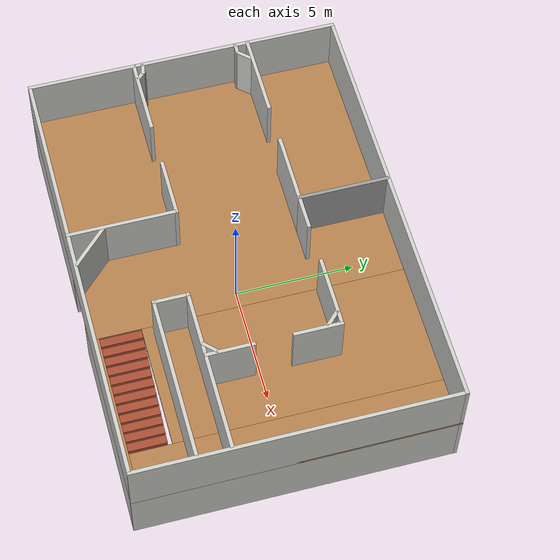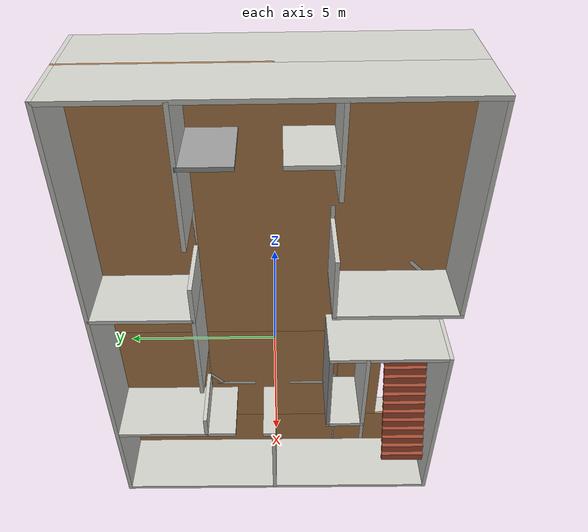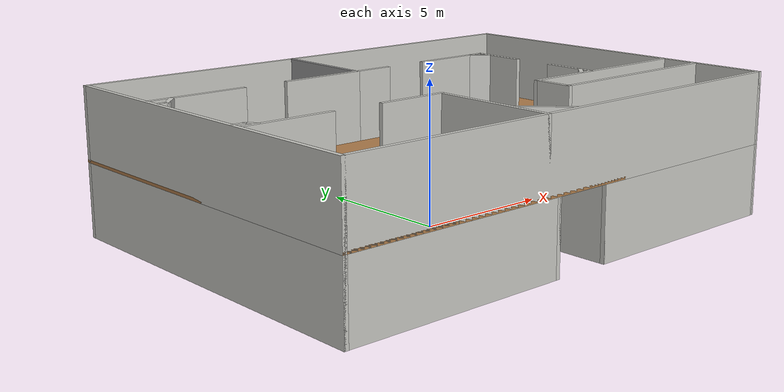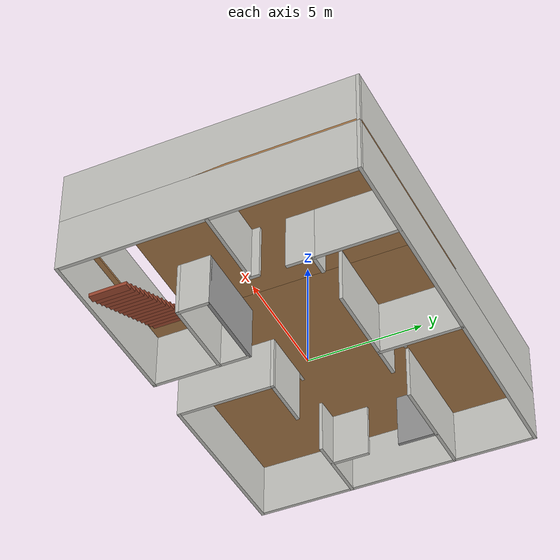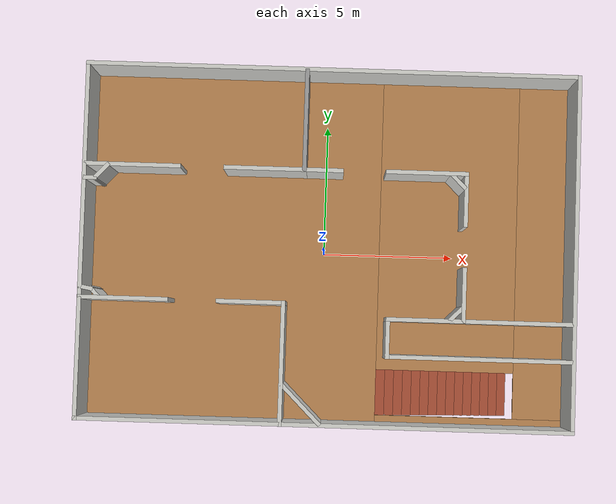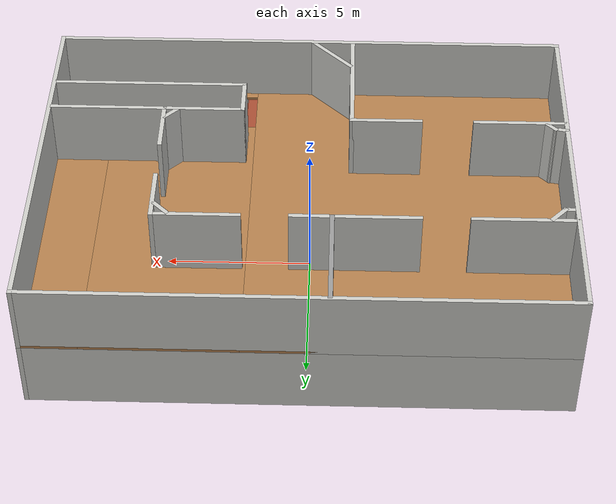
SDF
<?xml version='1.0'?>
<sdf version='1.6'>
  <model name='Indoor_Scenario'>
    <pose frame=''>0.186436 0.037213 0 0 -0 0</pose>
    <link name='Floor_1'>
      <pose frame=''>-0 0 2.5 0 -0 0</pose>
      <visual name='Floor_1_Visual_0'>
        <pose frame=''>-3.55155 0 0.05 0 -0 0</pose>
        <geometry>
          <box>
            <size>10.8969 13 0.1</size>
          </box>
        </geometry>
        <material>
          <script>
            <uri>file://media/materials/scripts/gazebo.material</uri>
            <name>Gazebo/Wood</name>
          </script>
          <ambient>1 1 1 1</ambient>
        </material>
        <meta>
          <layer>1</layer>
        </meta>
      </visual>
      <collision name='Floor_1_Collision_0'>
        <geometry>
          <box>
            <size>10.8969 13 0.1</size>
          </box>
        </geometry>
        <pose frame=''>-3.55155 0 0.05 0 -0 0</pose>
      </collision>
      <visual name='Floor_1_Visual_1'>
        <pose frame=''>5.44845 -6.305 0.05 0 -0 0</pose>
        <geometry>
          <box>
            <size>7.1031 0.389994 0.1</size>
          </box>
        </geometry>
        <material>
          <script>
            <uri>file://media/materials/scripts/gazebo.material</uri>
            <name>Gazebo/Wood</name>
          </script>
          <ambient>1 1 1 1</ambient>
        </material>
        <meta>
          <layer>1</layer>
        </meta>
      </visual>
      <collision name='Floor_1_Collision_1'>
        <geometry>
          <box>
            <size>7.1031 0.389994 0.1</size>
          </box>
        </geometry>
        <pose frame=''>5.44845 -6.305 0.05 0 -0 0</pose>
      </collision>
      <visual name='Floor_1_Visual_2'>
        <pose frame=''>8.0197 0.194997 0.05 0 -0 0</pose>
        <geometry>
          <box>
            <size>1.9606 12.61 0.1</size>
          </box>
        </geometry>
        <material>
          <script>
            <uri>file://media/materials/scripts/gazebo.material</uri>
            <name>Gazebo/Wood</name>
          </script>
          <ambient>1 1 1 1</ambient>
        </material>
        <meta>
          <layer>1</layer>
        </meta>
      </visual>
      <collision name='Floor_1_Collision_2'>
        <geometry>
          <box>
            <size>1.9606 12.61 0.1</size>
          </box>
        </geometry>
        <pose frame=''>8.0197 0.194997 0.05 0 -0 0</pose>
      </collision>
      <visual name='Floor_1_Visual_3'>
        <pose frame=''>4.46815 1.045 0.05 0 -0 0</pose>
        <geometry>
          <box>
            <size>5.1425 10.91 0.1</size>
          </box>
        </geometry>
        <material>
          <script>
            <uri>file://media/materials/scripts/gazebo.material</uri>
            <name>Gazebo/Wood</name>
          </script>
          <ambient>1 1 1 1</ambient>
        </material>
        <meta>
          <layer>1</layer>
        </meta>
      </visual>
      <collision name='Floor_1_Collision_3'>
        <geometry>
          <box>
            <size>5.1425 10.91 0.1</size>
          </box>
        </geometry>
        <pose frame=''>4.46815 1.045 0.05 0 -0 0</pose>
      </collision>
    </link>
    <link name='Stairs_0'>
      <visual name='Stairs_0_Visual_0'>
        <pose frame=''>6.86798 -5.26001 0.083333 0 -0 -1.5708</pose>
        <geometry>
          <box>
            <size>1.7 0.342833 0.166667</size>
          </box>
        </geometry>
        <material>
          <script>
            <uri>file://media/materials/scripts/gazebo.material</uri>
            <name>Gazebo/Bricks</name>
          </script>
          <ambient>1 1 1 1</ambient>
        </material>
        <meta>
          <layer>0</layer>
        </meta>
      </visual>
      <collision name='Stairs_0_Collision_0'>
        <geometry>
          <box>
            <size>1.7 0.342833 0.166667</size>
          </box>
        </geometry>
        <pose frame=''>6.86798 -5.26001 0.083333 0 -0 -1.5708</pose>
      </collision>
      <visual name='Stairs_0_Visual_1'>
        <pose frame=''>6.52515 -5.26001 0.25 0 -0 -1.5708</pose>
        <geometry>
          <box>
            <size>1.7 0.342833 0.166667</size>
          </box>
        </geometry>
        <material>
          <script>
            <uri>file://media/materials/scripts/gazebo.material</uri>
            <name>Gazebo/Bricks</name>
          </script>
          <ambient>1 1 1 1</ambient>
        </material>
        <meta>
          <layer>0</layer>
        </meta>
      </visual>
      <collision name='Stairs_0_Collision_1'>
        <geometry>
          <box>
            <size>1.7 0.342833 0.166667</size>
          </box>
        </geometry>
        <pose frame=''>6.52515 -5.26001 0.25 0 -0 -1.5708</pose>
      </collision>
      <visual name='Stairs_0_Visual_2'>
        <pose frame=''>6.18232 -5.26001 0.416667 0 -0 -1.5708</pose>
        <geometry>
          <box>
            <size>1.7 0.342833 0.166667</size>
          </box>
        </geometry>
        <material>
          <script>
            <uri>file://media/materials/scripts/gazebo.material</uri>
            <name>Gazebo/Bricks</name>
          </script>
          <ambient>1 1 1 1</ambient>
        </material>
        <meta>
          <layer>0</layer>
        </meta>
      </visual>
      <collision name='Stairs_0_Collision_2'>
        <geometry>
          <box>
            <size>1.7 0.342833 0.166667</size>
          </box>
        </geometry>
        <pose frame=''>6.18232 -5.26001 0.416667 0 -0 -1.5708</pose>
      </collision>
      <visual name='Stairs_0_Visual_3'>
        <pose frame=''>5.83948 -5.26 0.583333 0 -0 -1.5708</pose>
        <geometry>
          <box>
            <size>1.7 0.342833 0.166667</size>
          </box>
        </geometry>
        <material>
          <script>
            <uri>file://media/materials/scripts/gazebo.material</uri>
            <name>Gazebo/Bricks</name>
          </script>
          <ambient>1 1 1 1</ambient>
        </material>
        <meta>
          <layer>0</layer>
        </meta>
      </visual>
      <collision name='Stairs_0_Collision_3'>
        <geometry>
          <box>
            <size>1.7 0.342833 0.166667</size>
          </box>
        </geometry>
        <pose frame=''>5.83948 -5.26 0.583333 0 -0 -1.5708</pose>
      </collision>
      <visual name='Stairs_0_Visual_4'>
        <pose frame=''>5.49665 -5.26 0.75 0 -0 -1.5708</pose>
        <geometry>
          <box>
            <size>1.7 0.342833 0.166667</size>
          </box>
        </geometry>
        <material>
          <script>
            <uri>file://media/materials/scripts/gazebo.material</uri>
            <name>Gazebo/Bricks</name>
          </script>
          <ambient>1 1 1 1</ambient>
        </material>
        <meta>
          <layer>0</layer>
        </meta>
      </visual>
      <collision name='Stairs_0_Collision_4'>
        <geometry>
          <box>
            <size>1.7 0.342833 0.166667</size>
          </box>
        </geometry>
        <pose frame=''>5.49665 -5.26 0.75 0 -0 -1.5708</pose>
      </collision>
      <visual name='Stairs_0_Visual_5'>
        <pose frame=''>5.15381 -5.26 0.916667 0 -0 -1.5708</pose>
        <geometry>
          <box>
            <size>1.7 0.342833 0.166667</size>
          </box>
        </geometry>
        <material>
          <script>
            <uri>file://media/materials/scripts/gazebo.material</uri>
            <name>Gazebo/Bricks</name>
          </script>
          <ambient>1 1 1 1</ambient>
        </material>
        <meta>
          <layer>0</layer>
        </meta>
      </visual>
      <collision name='Stairs_0_Collision_5'>
        <geometry>
          <box>
            <size>1.7 0.342833 0.166667</size>
          </box>
        </geometry>
        <pose frame=''>5.15381 -5.26 0.916667 0 -0 -1.5708</pose>
      </collision>
      <visual name='Stairs_0_Visual_6'>
        <pose frame=''>4.81098 -5.26 1.08333 0 -0 -1.5708</pose>
        <geometry>
          <box>
            <size>1.7 0.342833 0.166667</size>
          </box>
        </geometry>
        <material>
          <script>
            <uri>file://media/materials/scripts/gazebo.material</uri>
            <name>Gazebo/Bricks</name>
          </script>
          <ambient>1 1 1 1</ambient>
        </material>
        <meta>
          <layer>0</layer>
        </meta>
      </visual>
      <collision name='Stairs_0_Collision_6'>
        <geometry>
          <box>
            <size>1.7 0.342833 0.166667</size>
          </box>
        </geometry>
        <pose frame=''>4.81098 -5.26 1.08333 0 -0 -1.5708</pose>
      </collision>
      <visual name='Stairs_0_Visual_7'>
        <pose frame=''>4.46815 -5.26 1.25 0 -0 -1.5708</pose>
        <geometry>
          <box>
            <size>1.7 0.342833 0.166667</size>
          </box>
        </geometry>
        <material>
          <script>
            <uri>file://media/materials/scripts/gazebo.material</uri>
            <name>Gazebo/Bricks</name>
          </script>
          <ambient>1 1 1 1</ambient>
        </material>
        <meta>
          <layer>0</layer>
        </meta>
      </visual>
      <collision name='Stairs_0_Collision_7'>
        <geometry>
          <box>
            <size>1.7 0.342833 0.166667</size>
          </box>
        </geometry>
        <pose frame=''>4.46815 -5.26 1.25 0 -0 -1.5708</pose>
      </collision>
      <visual name='Stairs_0_Visual_8'>
        <pose frame=''>4.12531 -5.26 1.41667 0 -0 -1.5708</pose>
        <geometry>
          <box>
            <size>1.7 0.342833 0.166667</size>
          </box>
        </geometry>
        <material>
          <script>
            <uri>file://media/materials/scripts/gazebo.material</uri>
            <name>Gazebo/Bricks</name>
          </script>
          <ambient>1 1 1 1</ambient>
        </material>
        <meta>
          <layer>0</layer>
        </meta>
      </visual>
      <collision name='Stairs_0_Collision_8'>
        <geometry>
          <box>
            <size>1.7 0.342833 0.166667</size>
          </box>
        </geometry>
        <pose frame=''>4.12531 -5.26 1.41667 0 -0 -1.5708</pose>
      </collision>
      <visual name='Stairs_0_Visual_9'>
        <pose frame=''>3.78248 -5.26 1.58333 0 -0 -1.5708</pose>
        <geometry>
          <box>
            <size>1.7 0.342833 0.166667</size>
          </box>
        </geometry>
        <material>
          <script>
            <uri>file://media/materials/scripts/gazebo.material</uri>
            <name>Gazebo/Bricks</name>
          </script>
          <ambient>1 1 1 1</ambient>
        </material>
        <meta>
          <layer>0</layer>
        </meta>
      </visual>
      <collision name='Stairs_0_Collision_9'>
        <geometry>
          <box>
            <size>1.7 0.342833 0.166667</size>
          </box>
        </geometry>
        <pose frame=''>3.78248 -5.26 1.58333 0 -0 -1.5708</pose>
      </collision>
      <visual name='Stairs_0_Visual_10'>
        <pose frame=''>3.43965 -5.26 1.75 0 -0 -1.5708</pose>
        <geometry>
          <box>
            <size>1.7 0.342833 0.166667</size>
          </box>
        </geometry>
        <material>
          <script>
            <uri>file://media/materials/scripts/gazebo.material</uri>
            <name>Gazebo/Bricks</name>
          </script>
          <ambient>1 1 1 1</ambient>
        </material>
        <meta>
          <layer>0</layer>
        </meta>
      </visual>
      <collision name='Stairs_0_Collision_10'>
        <geometry>
          <box>
            <size>1.7 0.342833 0.166667</size>
          </box>
        </geometry>
        <pose frame=''>3.43965 -5.26 1.75 0 -0 -1.5708</pose>
      </collision>
      <visual name='Stairs_0_Visual_11'>
        <pose frame=''>3.09681 -5.26 1.91667 0 -0 -1.5708</pose>
        <geometry>
          <box>
            <size>1.7 0.342833 0.166667</size>
          </box>
        </geometry>
        <material>
          <script>
            <uri>file://media/materials/scripts/gazebo.material</uri>
            <name>Gazebo/Bricks</name>
          </script>
          <ambient>1 1 1 1</ambient>
        </material>
        <meta>
          <layer>0</layer>
        </meta>
      </visual>
      <collision name='Stairs_0_Collision_11'>
        <geometry>
          <box>
            <size>1.7 0.342833 0.166667</size>
          </box>
        </geometry>
        <pose frame=''>3.09681 -5.26 1.91667 0 -0 -1.5708</pose>
      </collision>
      <visual name='Stairs_0_Visual_12'>
        <pose frame=''>2.75398 -5.26 2.08333 0 -0 -1.5708</pose>
        <geometry>
          <box>
            <size>1.7 0.342833 0.166667</size>
          </box>
        </geometry>
        <material>
          <script>
            <uri>file://media/materials/scripts/gazebo.material</uri>
            <name>Gazebo/Bricks</name>
          </script>
          <ambient>1 1 1 1</ambient>
        </material>
        <meta>
          <layer>0</layer>
        </meta>
      </visual>
      <collision name='Stairs_0_Collision_12'>
        <geometry>
          <box>
            <size>1.7 0.342833 0.166667</size>
          </box>
        </geometry>
        <pose frame=''>2.75398 -5.26 2.08333 0 -0 -1.5708</pose>
      </collision>
      <visual name='Stairs_0_Visual_13'>
        <pose frame=''>2.41115 -5.26 2.25 0 -0 -1.5708</pose>
        <geometry>
          <box>
            <size>1.7 0.342833 0.166667</size>
          </box>
        </geometry>
        <material>
          <script>
            <uri>file://media/materials/scripts/gazebo.material</uri>
            <name>Gazebo/Bricks</name>
          </script>
          <ambient>1 1 1 1</ambient>
        </material>
        <meta>
          <layer>0</layer>
        </meta>
      </visual>
      <collision name='Stairs_0_Collision_13'>
        <geometry>
          <box>
            <size>1.7 0.342833 0.166667</size>
          </box>
        </geometry>
        <pose frame=''>2.41115 -5.26 2.25 0 -0 -1.5708</pose>
      </collision>
      <visual name='Stairs_0_Visual_14'>
        <pose frame=''>2.06831 -5.26 2.41667 0 -0 -1.5708</pose>
        <geometry>
          <box>
            <size>1.7 0.342833 0.166667</size>
          </box>
        </geometry>
        <material>
          <script>
            <uri>file://media/materials/scripts/gazebo.material</uri>
            <name>Gazebo/Bricks</name>
          </script>
          <ambient>1 1 1 1</ambient>
        </material>
        <meta>
          <layer>0</layer>
        </meta>
      </visual>
      <collision name='Stairs_0_Collision_14'>
        <geometry>
          <box>
            <size>1.7 0.342833 0.166667</size>
          </box>
        </geometry>
        <pose frame=''>2.06831 -5.26 2.41667 0 -0 -1.5708</pose>
      </collision>
    </link>
    <link name='Wall_0'>
      <collision name='Wall_0_Collision'>
        <geometry>
          <box>
            <size>8 0.15 2.5</size>
          </box>
        </geometry>
        <pose frame=''>0 0 1.25 0 -0 0</pose>
      </collision>
      <visual name='Wall_0_Visual'>
        <pose frame=''>0 0 1.25 0 -0 0</pose>
        <geometry>
          <box>
            <size>8 0.15 2.5</size>
          </box>
        </geometry>
        <material>
          <script>
            <uri>file://media/materials/scripts/gazebo.material</uri>
            <name>Gazebo/CeilingTiled</name>
          </script>
          <ambient>0.654902 0.537255 0.419608 1</ambient>
        </material>
        <meta>
          <layer>0</layer>
        </meta>
      </visual>
      <pose frame=''>5 -6.425 0 0 -0 0</pose>
    </link>
    <link name='Wall_1'>
      <collision name='Wall_1_Collision'>
        <geometry>
          <box>
            <size>13 0.15 2.5</size>
          </box>
        </geometry>
        <pose frame=''>0 0 1.25 0 -0 0</pose>
      </collision>
      <visual name='Wall_1_Visual'>
        <pose frame=''>0 0 1.25 0 -0 0</pose>
        <geometry>
          <box>
            <size>13 0.15 2.5</size>
          </box>
        </geometry>
        <material>
          <script>
            <uri>file://media/materials/scripts/gazebo.material</uri>
            <name>Gazebo/CeilingTiled</name>
          </script>
          <ambient>0.654902 0.537255 0.419608 1</ambient>
        </material>
        <meta>
          <layer>0</layer>
        </meta>
      </visual>
      <pose frame=''>8.925 0 0 0 -0 1.5708</pose>
    </link>
    <link name='Wall_101'>
      <collision name='Wall_101_Collision'>
        <geometry>
          <box>
            <size>18 0.15 2.5</size>
          </box>
        </geometry>
        <pose frame=''>0 0 1.25 0 -0 0</pose>
      </collision>
      <visual name='Wall_101_Visual'>
        <pose frame=''>0 0 1.25 0 -0 0</pose>
        <geometry>
          <box>
            <size>18 0.15 2.5</size>
          </box>
        </geometry>
        <material>
          <script>
            <uri>file://media/materials/scripts/gazebo.material</uri>
            <name>Gazebo/CeilingTiled</name>
          </script>
          <ambient>0.658824 0.541176 0.423529 1</ambient>
        </material>
        <meta>
          <layer>1</layer>
        </meta>
      </visual>
      <pose frame=''>-0 -6.425 2.5 0 -0 0</pose>
    </link>
    <link name='Wall_108'>
      <collision name='Wall_108_Collision'>
        <geometry>
          <box>
            <size>3 0.15 2.5</size>
          </box>
        </geometry>
        <pose frame=''>0 0 1.25 0 -0 0</pose>
      </collision>
      <visual name='Wall_108_Visual'>
        <pose frame=''>0 0 1.25 0 -0 0</pose>
        <geometry>
          <box>
            <size>3 0.15 2.5</size>
          </box>
        </geometry>
        <material>
          <script>
            <uri>file://media/materials/scripts/gazebo.material</uri>
            <name>Gazebo/CeilingTiled</name>
          </script>
          <ambient>1 1 1 1</ambient>
        </material>
        <meta>
          <layer>1</layer>
        </meta>
      </visual>
      <pose frame=''>3.48912 2.78254 2.5 0 -0 0</pose>
    </link>
    <link name='Wall_109'>
      <collision name='Wall_109_Collision'>
        <geometry>
          <box>
            <size>2 0.15 2.5</size>
          </box>
        </geometry>
        <pose frame=''>0 0 1.25 0 -0 0</pose>
      </collision>
      <visual name='Wall_109_Visual'>
        <pose frame=''>0 0 1.25 0 -0 0</pose>
        <geometry>
          <box>
            <size>2 0.15 2.5</size>
          </box>
        </geometry>
        <material>
          <script>
            <uri>file://media/materials/scripts/gazebo.material</uri>
            <name>Gazebo/CeilingTiled</name>
          </script>
          <ambient>1 1 1 1</ambient>
        </material>
        <meta>
          <layer>1</layer>
        </meta>
      </visual>
      <pose frame=''>4.91412 1.85754 2.5 0 -0 -1.5708</pose>
    </link>
    <link name='Wall_11'>
      <collision name='Wall_11_Collision'>
        <geometry>
          <box>
            <size>4.5 0.15 2.5</size>
          </box>
        </geometry>
        <pose frame=''>0 0 1.25 0 -0 0</pose>
      </collision>
      <visual name='Wall_11_Visual'>
        <pose frame=''>0 0 1.25 0 -0 0</pose>
        <geometry>
          <box>
            <size>4.5 0.15 2.5</size>
          </box>
        </geometry>
        <material>
          <script>
            <uri>file://media/materials/scripts/gazebo.material</uri>
            <name>Gazebo/CeilingTiled</name>
          </script>
          <ambient>0.654902 0.537255 0.419608 1</ambient>
        </material>
        <meta>
          <layer>0</layer>
        </meta>
      </visual>
      <pose frame=''>1.075 -4.25 0 0 -0 1.5708</pose>
    </link>
    <link name='Wall_111'>
      <collision name='Wall_111_Collision'>
        <geometry>
          <box>
            <size>2 0.15 2.5</size>
          </box>
        </geometry>
        <pose frame=''>0 0 1.25 0 -0 0</pose>
      </collision>
      <visual name='Wall_111_Visual'>
        <pose frame=''>0 0 1.25 0 -0 0</pose>
        <geometry>
          <box>
            <size>2 0.15 2.5</size>
          </box>
        </geometry>
        <material>
          <script>
            <uri>file://media/materials/scripts/gazebo.material</uri>
            <name>Gazebo/CeilingTiled</name>
          </script>
          <ambient>1 1 1 1</ambient>
        </material>
        <meta>
          <layer>1</layer>
        </meta>
      </visual>
      <pose frame=''>4.92449 -1.59747 2.5 0 -0 -1.5708</pose>
    </link>
    <link name='Wall_115'>
      <collision name='Wall_115_Collision'>
        <geometry>
          <box>
            <size>2 0.15 2.5</size>
          </box>
        </geometry>
        <pose frame=''>0 0 1.25 0 -0 0</pose>
      </collision>
      <visual name='Wall_115_Visual'>
        <pose frame=''>0 0 1.25 0 -0 0</pose>
        <geometry>
          <box>
            <size>2 0.15 2.5</size>
          </box>
        </geometry>
        <material>
          <script>
            <uri>file://media/materials/scripts/gazebo.material</uri>
            <name>Gazebo/CeilingTiled</name>
          </script>
          <ambient>1 1 1 1</ambient>
        </material>
        <meta>
          <layer>1</layer>
        </meta>
      </visual>
      <pose frame=''>-0.839695 -5.70978 2.5 0 -0 -0.785398</pose>
    </link>
    <link name='Wall_117'>
      <collision name='Wall_117_Collision'>
        <geometry>
          <box>
            <size>0.75 0.15 2.5</size>
          </box>
        </geometry>
        <pose frame=''>0 0 1.25 0 -0 0</pose>
      </collision>
      <visual name='Wall_117_Visual'>
        <pose frame=''>0 0 1.25 0 -0 0</pose>
        <geometry>
          <box>
            <size>0.75 0.15 2.5</size>
          </box>
        </geometry>
        <material>
          <script>
            <uri>file://media/materials/scripts/gazebo.material</uri>
            <name>Gazebo/CeilingTiled</name>
          </script>
          <ambient>1 1 1 1</ambient>
        </material>
        <meta>
          <layer>1</layer>
        </meta>
      </visual>
      <pose frame=''>4.66498 -2.29002 2.5 0 -0 0.785398</pose>
    </link>
    <link name='Wall_119'>
      <collision name='Wall_119_Collision'>
        <geometry>
          <box>
            <size>0.75 0.15 2.5</size>
          </box>
        </geometry>
        <pose frame=''>0 0 1.25 0 -0 0</pose>
      </collision>
      <visual name='Wall_119_Visual'>
        <pose frame=''>0 0 1.25 0 -0 0</pose>
        <geometry>
          <box>
            <size>0.75 0.15 2.5</size>
          </box>
        </geometry>
        <material>
          <script>
            <uri>file://media/materials/scripts/gazebo.material</uri>
            <name>Gazebo/CeilingTiled</name>
          </script>
          <ambient>1 1 1 1</ambient>
        </material>
        <meta>
          <layer>1</layer>
        </meta>
      </visual>
      <pose frame=''>4.6255 2.50225 2.5 0 -0 2.35619</pose>
    </link>
    <link name='Wall_12'>
      <collision name='Wall_12_Collision'>
        <geometry>
          <box>
            <size>3.75 0.15 2.5</size>
          </box>
        </geometry>
        <pose frame=''>0 0 1.25 0 -0 0</pose>
      </collision>
      <visual name='Wall_12_Visual'>
        <pose frame=''>0 0 1.25 0 -0 0</pose>
        <geometry>
          <box>
            <size>3.75 0.15 2.5</size>
          </box>
        </geometry>
        <material>
          <script>
            <uri>file://media/materials/scripts/gazebo.material</uri>
            <name>Gazebo/Grey</name>
          </script>
          <ambient>1 1 1 1</ambient>
        </material>
        <meta>
          <layer>0</layer>
        </meta>
      </visual>
      <pose frame=''>2.875 -2.075 0 0 -0 0</pose>
    </link>
    <link name='Wall_128'>
      <collision name='Wall_128_Collision'>
        <geometry>
          <box>
            <size>0.5 0.15 2.5</size>
          </box>
        </geometry>
        <pose frame=''>0 0 1.25 0 -0 0</pose>
      </collision>
      <visual name='Wall_128_Visual'>
        <pose frame=''>0 0 1.25 0 -0 0</pose>
        <geometry>
          <box>
            <size>0.5 0.15 2.5</size>
          </box>
        </geometry>
        <material>
          <script>
            <uri>file://media/materials/scripts/gazebo.material</uri>
            <name>Gazebo/CeilingTiled</name>
          </script>
          <ambient>1 1 1 1</ambient>
        </material>
        <meta>
          <layer>1</layer>
        </meta>
      </visual>
      <pose frame=''>-8.70556 2.24316 2.5 0 -0 0</pose>
    </link>
    <link name='Wall_129'>
      <collision name='Wall_129_Collision'>
        <geometry>
          <box>
            <size>0.802321 0.15 2.5</size>
          </box>
        </geometry>
        <pose frame=''>0 0 1.25 0 -0 0</pose>
      </collision>
      <visual name='Wall_129_Visual'>
        <pose frame=''>0 0 1.25 0 -0 0</pose>
        <geometry>
          <box>
            <size>0.802321 0.15 2.5</size>
          </box>
        </geometry>
        <material>
          <script>
            <uri>file://media/materials/scripts/gazebo.material</uri>
            <name>Gazebo/CeilingTiled</name>
          </script>
          <ambient>1 1 1 1</ambient>
        </material>
        <meta>
          <layer>1</layer>
        </meta>
      </visual>
      <pose frame=''>-8.30782 2.48141 2.5 0 -0 0.819008</pose>
    </link>
    <link name='Wall_13'>
      <collision name='Wall_13_Collision'>
        <geometry>
          <box>
            <size>1.5 0.15 2.5</size>
          </box>
        </geometry>
        <pose frame=''>0 0 1.25 0 -0 0</pose>
      </collision>
      <visual name='Wall_13_Visual'>
        <pose frame=''>0 0 1.25 0 -0 0</pose>
        <geometry>
          <box>
            <size>1.5 0.15 2.5</size>
          </box>
        </geometry>
        <material>
          <script>
            <uri>file://media/materials/scripts/gazebo.material</uri>
            <name>Gazebo/CeilingTiled</name>
          </script>
          <ambient>1 1 1 1</ambient>
        </material>
        <meta>
          <layer>0</layer>
        </meta>
      </visual>
      <pose frame=''>4.675 -2.75 0 0 -0 -1.5708</pose>
    </link>
    <link name='Wall_131'>
      <collision name='Wall_131_Collision'>
        <geometry>
          <box>
            <size>0.529328 0.15 2.5</size>
          </box>
        </geometry>
        <pose frame=''>0 0 1.25 0 -0 0</pose>
      </collision>
      <visual name='Wall_131_Visual'>
        <pose frame=''>0 0 1.25 0 -0 0</pose>
        <geometry>
          <box>
            <size>0.529328 0.15 2.5</size>
          </box>
        </geometry>
        <material>
          <script>
            <uri>file://media/materials/scripts/gazebo.material</uri>
            <name>Gazebo/CeilingTiled</name>
          </script>
          <ambient>1 1 1 1</ambient>
        </material>
        <meta>
          <layer>1</layer>
        </meta>
      </visual>
      <pose frame=''>-8.71165 -1.73835 2.5 0 -0 -0.182919</pose>
    </link>
    <link name='Wall_132'>
      <collision name='Wall_132_Collision'>
        <geometry>
          <box>
            <size>0.5 0.15 2.5</size>
          </box>
        </geometry>
        <pose frame=''>0 0 1.25 0 -0 0</pose>
      </collision>
      <visual name='Wall_132_Visual'>
        <pose frame=''>0 0 1.25 0 -0 0</pose>
        <geometry>
          <box>
            <size>0.5 0.15 2.5</size>
          </box>
        </geometry>
        <material>
          <script>
            <uri>file://media/materials/scripts/gazebo.material</uri>
            <name>Gazebo/CeilingTiled</name>
          </script>
          <ambient>1 1 1 1</ambient>
        </material>
        <meta>
          <layer>1</layer>
        </meta>
      </visual>
      <pose frame=''>-8.40141 -1.8851 2.5 0 -0 -0.785398</pose>
    </link>
    <link name='Wall_15'>
      <collision name='Wall_15_Collision'>
        <geometry>
          <box>
            <size>3.75 0.15 2.5</size>
          </box>
        </geometry>
        <pose frame=''>0 0 1.25 0 -0 0</pose>
      </collision>
      <visual name='Wall_15_Visual'>
        <pose frame=''>0 0 1.25 0 -0 0</pose>
        <geometry>
          <box>
            <size>3.75 0.15 2.5</size>
          </box>
        </geometry>
        <material>
          <script>
            <uri>file://media/materials/scripts/gazebo.material</uri>
            <name>Gazebo/CeilingTiled</name>
          </script>
          <ambient>1 1 1 1</ambient>
        </material>
        <meta>
          <layer>0</layer>
        </meta>
      </visual>
      <pose frame=''>-0.967862 4.56501 0 0 -0 -1.5708</pose>
    </link>
    <link name='Wall_17'>
      <collision name='Wall_17_Collision'>
        <geometry>
          <box>
            <size>1.5 0.15 2.5</size>
          </box>
        </geometry>
        <pose frame=''>0 0 1.25 0 -0 0</pose>
      </collision>
      <visual name='Wall_17_Visual'>
        <pose frame=''>0 0 1.25 0 -0 0</pose>
        <geometry>
          <box>
            <size>1.5 0.15 2.5</size>
          </box>
        </geometry>
        <material>
          <script>
            <uri>file://media/materials/scripts/gazebo.material</uri>
            <name>Gazebo/CeilingTiled</name>
          </script>
          <ambient>1 1 1 1</ambient>
        </material>
        <meta>
          <layer>0</layer>
        </meta>
      </visual>
      <pose frame=''>-1.64286 2.76501 0 0 -0 3.14159</pose>
    </link>
    <link name='Wall_2'>
      <collision name='Wall_2_Collision'>
        <geometry>
          <box>
            <size>18 0.15 2.5</size>
          </box>
        </geometry>
        <pose frame=''>0 0 1.25 0 -0 0</pose>
      </collision>
      <visual name='Wall_2_Visual'>
        <pose frame=''>0 0 1.25 0 -0 0</pose>
        <geometry>
          <box>
            <size>18 0.15 2.5</size>
          </box>
        </geometry>
        <material>
          <script>
            <uri>file://media/materials/scripts/gazebo.material</uri>
            <name>Gazebo/CeilingTiled</name>
          </script>
          <ambient>0.654902 0.537255 0.419608 1</ambient>
        </material>
        <meta>
          <layer>0</layer>
        </meta>
      </visual>
      <pose frame=''>-0 6.425 0 0 -0 3.14159</pose>
    </link>
    <link name='Wall_21'>
      <collision name='Wall_21_Collision'>
        <geometry>
          <box>
            <size>3.75 0.15 2.5</size>
          </box>
        </geometry>
        <pose frame=''>0 0 1.25 0 -0 0</pose>
      </collision>
      <visual name='Wall_21_Visual'>
        <pose frame=''>0 0 1.25 0 -0 0</pose>
        <geometry>
          <box>
            <size>3.75 0.15 2.5</size>
          </box>
        </geometry>
        <material>
          <script>
            <uri>file://media/materials/scripts/gazebo.material</uri>
            <name>Gazebo/CeilingTiled</name>
          </script>
          <ambient>1 1 1 1</ambient>
        </material>
        <meta>
          <layer>0</layer>
        </meta>
      </visual>
      <pose frame=''>0.832138 2.76501 0 0 -0 0</pose>
    </link>
    <link name='Wall_23'>
      <collision name='Wall_23_Collision'>
        <geometry>
          <box>
            <size>3.75 0.15 2.5</size>
          </box>
        </geometry>
        <pose frame=''>0 0 1.25 0 -0 0</pose>
      </collision>
      <visual name='Wall_23_Visual'>
        <pose frame=''>0 0 1.25 0 -0 0</pose>
        <geometry>
          <box>
            <size>3.75 0.15 2.5</size>
          </box>
        </geometry>
        <material>
          <script>
            <uri>file://media/materials/scripts/gazebo.material</uri>
            <name>Gazebo/CeilingTiled</name>
          </script>
          <ambient>1 1 1 1</ambient>
        </material>
        <meta>
          <layer>0</layer>
        </meta>
      </visual>
      <pose frame=''>5.26773 4.59542 0 0 -0 -1.5708</pose>
    </link>
    <link name='Wall_24'>
      <collision name='Wall_24_Collision'>
        <geometry>
          <box>
            <size>1 0.15 2.5</size>
          </box>
        </geometry>
        <pose frame=''>0 0 1.25 0 -0 0</pose>
      </collision>
      <visual name='Wall_24_Visual'>
        <pose frame=''>0 0 1.25 0 -0 0</pose>
        <geometry>
          <box>
            <size>1 0.15 2.5</size>
          </box>
        </geometry>
        <material>
          <script>
            <uri>file://media/materials/scripts/gazebo.material</uri>
            <name>Gazebo/CeilingTiled</name>
          </script>
          <ambient>1 1 1 1</ambient>
        </material>
        <meta>
          <layer>0</layer>
        </meta>
      </visual>
      <pose frame=''>4.84272 2.79542 0 0 -0 3.14159</pose>
    </link>
    <link name='Wall_26'>
      <collision name='Wall_26_Collision'>
        <geometry>
          <box>
            <size>1.25042 0.15 2.5</size>
          </box>
        </geometry>
        <pose frame=''>0 0 1.25 0 -0 0</pose>
      </collision>
      <visual name='Wall_26_Visual'>
        <pose frame=''>0 0 1.25 0 -0 0</pose>
        <geometry>
          <box>
            <size>1.25042 0.15 2.5</size>
          </box>
        </geometry>
        <material>
          <script>
            <uri>file://media/materials/scripts/gazebo.material</uri>
            <name>Gazebo/CeilingTiled</name>
          </script>
          <ambient>1 1 1 1</ambient>
        </material>
        <meta>
          <layer>0</layer>
        </meta>
      </visual>
      <pose frame=''>5.26773 2.24542 0 0 -0 -1.5708</pose>
    </link>
    <link name='Wall_28'>
      <collision name='Wall_28_Collision'>
        <geometry>
          <box>
            <size>0.5 0.15 2.5</size>
          </box>
        </geometry>
        <pose frame=''>0 0 1.25 0 -0 0</pose>
      </collision>
      <visual name='Wall_28_Visual'>
        <pose frame=''>0 0 1.25 0 -0 0</pose>
        <geometry>
          <box>
            <size>0.5 0.15 2.5</size>
          </box>
        </geometry>
        <material>
          <script>
            <uri>file://media/materials/scripts/gazebo.material</uri>
            <name>Gazebo/CeilingTiled</name>
          </script>
          <ambient>1 1 1 1</ambient>
        </material>
        <meta>
          <layer>0</layer>
        </meta>
      </visual>
      <pose frame=''>5.28293 0.258594 0 0 -0 -1.5708</pose>
    </link>
    <link name='Wall_29'>
      <collision name='Wall_29_Collision'>
        <geometry>
          <box>
            <size>3.75 0.15 2.5</size>
          </box>
        </geometry>
        <pose frame=''>0 0 1.25 0 -0 0</pose>
      </collision>
      <visual name='Wall_29_Visual'>
        <pose frame=''>0 0 1.25 0 -0 0</pose>
        <geometry>
          <box>
            <size>3.75 0.15 2.5</size>
          </box>
        </geometry>
        <material>
          <script>
            <uri>file://media/materials/scripts/gazebo.material</uri>
            <name>Gazebo/CeilingTiled</name>
          </script>
          <ambient>1 1 1 1</ambient>
        </material>
        <meta>
          <layer>0</layer>
        </meta>
      </visual>
      <pose frame=''>7.08293 0.083594 0 0 -0 0</pose>
    </link>
    <link name='Wall_3'>
      <collision name='Wall_3_Collision'>
        <geometry>
          <box>
            <size>13 0.15 2.5</size>
          </box>
        </geometry>
        <pose frame=''>0 0 1.25 0 -0 0</pose>
      </collision>
      <visual name='Wall_3_Visual'>
        <pose frame=''>0 0 1.25 0 -0 0</pose>
        <geometry>
          <box>
            <size>13 0.15 2.5</size>
          </box>
        </geometry>
        <material>
          <script>
            <uri>file://media/materials/scripts/gazebo.material</uri>
            <name>Gazebo/CeilingTiled</name>
          </script>
          <ambient>0.654902 0.537255 0.419608 1</ambient>
        </material>
        <meta>
          <layer>0</layer>
        </meta>
      </visual>
      <pose frame=''>-8.925 0 0 0 -0 -1.5708</pose>
    </link>
    <link name='Wall_4'>
      <collision name='Wall_4_Collision'>
        <geometry>
          <box>
            <size>8 0.15 2.5</size>
          </box>
        </geometry>
        <pose frame=''>0 0 1.25 0 -0 0</pose>
      </collision>
      <visual name='Wall_4_Visual'>
        <pose frame=''>0 0 1.25 0 -0 0</pose>
        <geometry>
          <box>
            <size>8 0.15 2.5</size>
          </box>
        </geometry>
        <material>
          <script>
            <uri>file://media/materials/scripts/gazebo.material</uri>
            <name>Gazebo/CeilingTiled</name>
          </script>
          <ambient>0.654902 0.537255 0.419608 1</ambient>
        </material>
        <meta>
          <layer>0</layer>
        </meta>
      </visual>
      <pose frame=''>-5 -6.425 0 0 -0 0</pose>
    </link>
    <link name='Wall_6'>
      <collision name='Wall_6_Collision'>
        <geometry>
          <box>
            <size>4.5 0.15 2.5</size>
          </box>
        </geometry>
        <pose frame=''>0 0 1.25 0 -0 0</pose>
      </collision>
      <visual name='Wall_6_Visual'>
        <pose frame=''>0 0 1.25 0 -0 0</pose>
        <geometry>
          <box>
            <size>4.5 0.15 2.5</size>
          </box>
        </geometry>
        <material>
          <script>
            <uri>file://media/materials/scripts/gazebo.material</uri>
            <name>Gazebo/CeilingTiled</name>
          </script>
          <ambient>0.654902 0.537255 0.419608 1</ambient>
        </material>
        <meta>
          <layer>0</layer>
        </meta>
      </visual>
      <pose frame=''>-1.075 -4.25 0 0 -0 1.5708</pose>
    </link>
    <link name='Wall_67'>
      <collision name='Wall_67_Collision'>
        <geometry>
          <box>
            <size>13 0.15 2.5</size>
          </box>
        </geometry>
        <pose frame=''>0 0 1.25 0 -0 0</pose>
      </collision>
      <visual name='Wall_67_Visual'>
        <pose frame=''>0 0 1.25 0 -0 0</pose>
        <geometry>
          <box>
            <size>13 0.15 2.5</size>
          </box>
        </geometry>
        <material>
          <script>
            <uri>file://media/materials/scripts/gazebo.material</uri>
            <name>Gazebo/CeilingTiled</name>
          </script>
          <ambient>0.658824 0.541176 0.423529 1</ambient>
        </material>
        <meta>
          <layer>1</layer>
        </meta>
      </visual>
      <pose frame=''>8.925 0 2.5 0 -0 1.5708</pose>
    </link>
    <link name='Wall_68'>
      <collision name='Wall_68_Collision'>
        <geometry>
          <box>
            <size>18 0.15 2.5</size>
          </box>
        </geometry>
        <pose frame=''>0 0 1.25 0 -0 0</pose>
      </collision>
      <visual name='Wall_68_Visual'>
        <pose frame=''>0 0 1.25 0 -0 0</pose>
        <geometry>
          <box>
            <size>18 0.15 2.5</size>
          </box>
        </geometry>
        <material>
          <script>
            <uri>file://media/materials/scripts/gazebo.material</uri>
            <name>Gazebo/CeilingTiled</name>
          </script>
          <ambient>0.658824 0.541176 0.423529 1</ambient>
        </material>
        <meta>
          <layer>1</layer>
        </meta>
      </visual>
      <pose frame=''>-0 6.425 2.5 0 -0 3.14159</pose>
    </link>
    <link name='Wall_69'>
      <collision name='Wall_69_Collision'>
        <geometry>
          <box>
            <size>13 0.15 2.5</size>
          </box>
        </geometry>
        <pose frame=''>0 0 1.25 0 -0 0</pose>
      </collision>
      <visual name='Wall_69_Visual'>
        <pose frame=''>0 0 1.25 0 -0 0</pose>
        <geometry>
          <box>
            <size>13 0.15 2.5</size>
          </box>
        </geometry>
        <material>
          <script>
            <uri>file://media/materials/scripts/gazebo.material</uri>
            <name>Gazebo/CeilingTiled</name>
          </script>
          <ambient>0.658824 0.541176 0.423529 1</ambient>
        </material>
        <meta>
          <layer>1</layer>
        </meta>
      </visual>
      <pose frame=''>-8.925 0 2.5 0 -0 -1.5708</pose>
    </link>
    <link name='Wall_7'>
      <collision name='Wall_7_Collision'>
        <geometry>
          <box>
            <size>2.4829 0.15 2.5</size>
          </box>
        </geometry>
        <pose frame=''>0 0 1.25 0 -0 0</pose>
      </collision>
      <visual name='Wall_7_Visual'>
        <pose frame=''>0 0 1.25 0 -0 0</pose>
        <geometry>
          <box>
            <size>2.4829 0.15 2.5</size>
          </box>
        </geometry>
        <material>
          <script>
            <uri>file://media/materials/scripts/gazebo.material</uri>
            <name>Gazebo/CeilingTiled</name>
          </script>
          <ambient>1 1 1 1</ambient>
        </material>
        <meta>
          <layer>0</layer>
        </meta>
      </visual>
      <pose frame=''>-2.24145 -2.075 0 0 -0 3.14159</pose>
    </link>
    <link name='Wall_71'>
      <collision name='Wall_71_Collision'>
        <geometry>
          <box>
            <size>4.5 0.15 2.5</size>
          </box>
        </geometry>
        <pose frame=''>0 0 1.25 0 -0 0</pose>
      </collision>
      <visual name='Wall_71_Visual'>
        <pose frame=''>0 0 1.25 0 -0 0</pose>
        <geometry>
          <box>
            <size>4.5 0.15 2.5</size>
          </box>
        </geometry>
        <material>
          <script>
            <uri>file://media/materials/scripts/gazebo.material</uri>
            <name>Gazebo/CeilingTiled</name>
          </script>
          <ambient>1 1 1 1</ambient>
        </material>
        <meta>
          <layer>1</layer>
        </meta>
      </visual>
      <pose frame=''>-1.575 -4.25 2.5 0 -0 1.5708</pose>
    </link>
    <link name='Wall_72'>
      <collision name='Wall_72_Collision'>
        <geometry>
          <box>
            <size>2.5 0.15 2.5</size>
          </box>
        </geometry>
        <pose frame=''>0 0 1.25 0 -0 0</pose>
      </collision>
      <visual name='Wall_72_Visual'>
        <pose frame=''>0 0 1.25 0 -0 0</pose>
        <geometry>
          <box>
            <size>2.5 0.15 2.5</size>
          </box>
        </geometry>
        <material>
          <script>
            <uri>file://media/materials/scripts/gazebo.material</uri>
            <name>Gazebo/CeilingTiled</name>
          </script>
          <ambient>1 1 1 1</ambient>
        </material>
        <meta>
          <layer>1</layer>
        </meta>
      </visual>
      <pose frame=''>-2.75 -2.075 2.5 0 -0 3.14159</pose>
    </link>
    <link name='Wall_73'>
      <collision name='Wall_73_Collision'>
        <geometry>
          <box>
            <size>3.25 0.15 2.5</size>
          </box>
        </geometry>
        <pose frame=''>0 0 1.25 0 -0 0</pose>
      </collision>
      <visual name='Wall_73_Visual'>
        <pose frame=''>0 0 1.25 0 -0 0</pose>
        <geometry>
          <box>
            <size>3.25 0.15 2.5</size>
          </box>
        </geometry>
        <material>
          <script>
            <uri>file://media/materials/scripts/gazebo.material</uri>
            <name>Gazebo/CeilingTiled</name>
          </script>
          <ambient>1 1 1 1</ambient>
        </material>
        <meta>
          <layer>1</layer>
        </meta>
      </visual>
      <pose frame=''>-7.35913 -2.07418 2.5 0 -0 0</pose>
    </link>
    <link name='Wall_77'>
      <collision name='Wall_77_Collision'>
        <geometry>
          <box>
            <size>3.75 0.15 2.5</size>
          </box>
        </geometry>
        <pose frame=''>0 0 1.25 0 -0 0</pose>
      </collision>
      <visual name='Wall_77_Visual'>
        <pose frame=''>0 0 1.25 0 -0 0</pose>
        <geometry>
          <box>
            <size>3.75 0.15 2.5</size>
          </box>
        </geometry>
        <material>
          <script>
            <uri>file://media/materials/scripts/gazebo.material</uri>
            <name>Gazebo/Grey</name>
          </script>
          <ambient>1 1 1 1</ambient>
        </material>
        <meta>
          <layer>1</layer>
        </meta>
      </visual>
      <pose frame=''>-0.967862 4.56501 2.5 0 -0 -1.5708</pose>
    </link>
    <link name='Wall_78'>
      <collision name='Wall_78_Collision'>
        <geometry>
          <box>
            <size>3 0.15 2.5</size>
          </box>
        </geometry>
        <pose frame=''>0 0 1.25 0 -0 0</pose>
      </collision>
      <visual name='Wall_78_Visual'>
        <pose frame=''>0 0 1.25 0 -0 0</pose>
        <geometry>
          <box>
            <size>3 0.15 2.5</size>
          </box>
        </geometry>
        <material>
          <script>
            <uri>file://media/materials/scripts/gazebo.material</uri>
            <name>Gazebo/CeilingTiled</name>
          </script>
          <ambient>1 1 1 1</ambient>
        </material>
        <meta>
          <layer>1</layer>
        </meta>
      </visual>
      <pose frame=''>-2.39286 2.76501 2.5 0 -0 3.14159</pose>
    </link>
    <link name='Wall_79'>
      <collision name='Wall_79_Collision'>
        <geometry>
          <box>
            <size>3.5 0.15 2.5</size>
          </box>
        </geometry>
        <pose frame=''>0 0 1.25 0 -0 0</pose>
      </collision>
      <visual name='Wall_79_Visual'>
        <pose frame=''>0 0 1.25 0 -0 0</pose>
        <geometry>
          <box>
            <size>3.5 0.15 2.5</size>
          </box>
        </geometry>
        <material>
          <script>
            <uri>file://media/materials/scripts/gazebo.material</uri>
            <name>Gazebo/CeilingTiled</name>
          </script>
          <ambient>1 1 1 1</ambient>
        </material>
        <meta>
          <layer>1</layer>
        </meta>
      </visual>
      <pose frame=''>-7.19229 2.76053 2.5 0 -0 0</pose>
    </link>
    <link name='Wall_80'>
      <collision name='Wall_80_Collision'>
        <geometry>
          <box>
            <size>1.5 0.15 2.5</size>
          </box>
        </geometry>
        <pose frame=''>0 0 1.25 0 -0 0</pose>
      </collision>
      <visual name='Wall_80_Visual'>
        <pose frame=''>0 0 1.25 0 -0 0</pose>
        <geometry>
          <box>
            <size>1.5 0.15 2.5</size>
          </box>
        </geometry>
        <material>
          <script>
            <uri>file://media/materials/scripts/gazebo.material</uri>
            <name>Gazebo/CeilingTiled</name>
          </script>
          <ambient>1 1 1 1</ambient>
        </material>
        <meta>
          <layer>1</layer>
        </meta>
      </visual>
      <pose frame=''>-0.292862 2.76501 2.5 0 -0 0</pose>
    </link>
    <link name='Wall_86'>
      <collision name='Wall_86_Collision'>
        <geometry>
          <box>
            <size>6.75 0.15 2.5</size>
          </box>
        </geometry>
        <pose frame=''>0 0 1.25 0 -0 0</pose>
      </collision>
      <visual name='Wall_86_Visual'>
        <pose frame=''>0 0 1.25 0 -0 0</pose>
        <geometry>
          <box>
            <size>6.75 0.15 2.5</size>
          </box>
        </geometry>
        <material>
          <script>
            <uri>file://media/materials/scripts/gazebo.material</uri>
            <name>Gazebo/CeilingTiled</name>
          </script>
          <ambient>1 1 1 1</ambient>
        </material>
        <meta>
          <layer>1</layer>
        </meta>
      </visual>
      <pose frame=''>5.50991 -2.54629 2.5 0 -0 0</pose>
    </link>
    <link name='Wall_88'>
      <collision name='Wall_88_Collision'>
        <geometry>
          <box>
            <size>1.5 0.15 2.5</size>
          </box>
        </geometry>
        <pose frame=''>0 0 1.25 0 -0 0</pose>
      </collision>
      <visual name='Wall_88_Visual'>
        <pose frame=''>0 0 1.25 0 -0 0</pose>
        <geometry>
          <box>
            <size>1.5 0.15 2.5</size>
          </box>
        </geometry>
        <material>
          <script>
            <uri>file://media/materials/scripts/gazebo.material</uri>
            <name>Gazebo/CeilingTiled</name>
          </script>
          <ambient>1 1 1 1</ambient>
        </material>
        <meta>
          <layer>1</layer>
        </meta>
      </visual>
      <pose frame=''>2.20991 -3.22129 2.5 0 -0 -1.5708</pose>
    </link>
    <link name='Wall_89'>
      <collision name='Wall_89_Collision'>
        <geometry>
          <box>
            <size>6.75 0.15 2.5</size>
          </box>
        </geometry>
        <pose frame=''>0 0 1.25 0 -0 0</pose>
      </collision>
      <visual name='Wall_89_Visual'>
        <pose frame=''>0 0 1.25 0 -0 0</pose>
        <geometry>
          <box>
            <size>6.75 0.15 2.5</size>
          </box>
        </geometry>
        <material>
          <script>
            <uri>file://media/materials/scripts/gazebo.material</uri>
            <name>Gazebo/CeilingTiled</name>
          </script>
          <ambient>1 1 1 1</ambient>
        </material>
        <meta>
          <layer>1</layer>
        </meta>
      </visual>
      <pose frame=''>5.50991 -3.89629 2.5 0 -0 0</pose>
    </link>
    <link name='Wall_9'>
      <collision name='Wall_9_Collision'>
        <geometry>
          <box>
            <size>3.25 0.15 2.5</size>
          </box>
        </geometry>
        <pose frame=''>0 0 1.25 0 -0 0</pose>
      </collision>
      <visual name='Wall_9_Visual'>
        <pose frame=''>0 0 1.25 0 -0 0</pose>
        <geometry>
          <box>
            <size>3.25 0.15 2.5</size>
          </box>
        </geometry>
        <material>
          <script>
            <uri>file://media/materials/scripts/gazebo.material</uri>
            <name>Gazebo/CeilingTiled</name>
          </script>
          <ambient>1 1 1 1</ambient>
        </material>
        <meta>
          <layer>0</layer>
        </meta>
      </visual>
      <pose frame=''>-7.35913 -2.07418 0 0 -0 0</pose>
    </link>
    <link name='Wall_93'>
      <collision name='Wall_93_Collision'>
        <geometry>
          <box>
            <size>3.75 0.15 2.5</size>
          </box>
        </geometry>
        <pose frame=''>0 0 1.25 0 -0 0</pose>
      </collision>
      <visual name='Wall_93_Visual'>
        <pose frame=''>0 0 1.25 0 -0 0</pose>
        <geometry>
          <box>
            <size>3.75 0.15 2.5</size>
          </box>
        </geometry>
        <material>
          <script>
            <uri>file://media/materials/scripts/gazebo.material</uri>
            <name>Gazebo/CeilingTiled</name>
          </script>
          <ambient>1 1 1 1</ambient>
        </material>
        <meta>
          <layer>0</layer>
        </meta>
      </visual>
      <pose frame=''>2.875 -3.425 0 0 -0 3.14159</pose>
    </link>
    <link name='Wall_95'>
      <collision name='Wall_95_Collision'>
        <geometry>
          <box>
            <size>5 0.15 2.5</size>
          </box>
        </geometry>
        <pose frame=''>0 0 1.25 0 -0 0</pose>
      </collision>
      <visual name='Wall_95_Visual'>
        <pose frame=''>0 0 1.25 0 -0 0</pose>
        <geometry>
          <box>
            <size>5 0.15 2.5</size>
          </box>
        </geometry>
        <material>
          <script>
            <uri>file://media/materials/scripts/gazebo.material</uri>
            <name>Gazebo/CeilingTiled</name>
          </script>
          <ambient>1 1 1 1</ambient>
        </material>
        <meta>
          <layer>0</layer>
        </meta>
      </visual>
      <pose frame=''>-6.47215 2.77677 0 0 -0 0</pose>
    </link>
    <link name='Wall_97'>
      <collision name='Wall_97_Collision'>
        <geometry>
          <box>
            <size>1.75 0.15 2.5</size>
          </box>
        </geometry>
        <pose frame=''>0 0 1.25 0 -0 0</pose>
      </collision>
      <visual name='Wall_97_Visual'>
        <pose frame=''>0 0 1.25 0 -0 0</pose>
        <geometry>
          <box>
            <size>1.75 0.15 2.5</size>
          </box>
        </geometry>
        <material>
          <script>
            <uri>file://media/materials/scripts/gazebo.material</uri>
            <name>Gazebo/CeilingTiled</name>
          </script>
          <ambient>1 1 1 1</ambient>
        </material>
        <meta>
          <layer>0</layer>
        </meta>
      </visual>
      <pose frame=''>-6.9048 -1.22919 0 0 -0 1.5708</pose>
    </link>
    <link name='Wall_99'>
      <collision name='Wall_99_Collision'>
        <geometry>
          <box>
            <size>1.75 0.15 2.5</size>
          </box>
        </geometry>
        <pose frame=''>0 0 1.25 0 -0 0</pose>
      </collision>
      <visual name='Wall_99_Visual'>
        <pose frame=''>0 0 1.25 0 -0 0</pose>
        <geometry>
          <box>
            <size>1.75 0.15 2.5</size>
          </box>
        </geometry>
        <material>
          <script>
            <uri>file://media/materials/scripts/gazebo.material</uri>
            <name>Gazebo/Grey</name>
          </script>
          <ambient>1 1 1 1</ambient>
        </material>
        <meta>
          <layer>0</layer>
        </meta>
      </visual>
      <pose frame=''>-6.88959 1.91594 0 0 -0 -1.5708</pose>
    </link>
    <static>1</static>
  </model>
</sdf>
